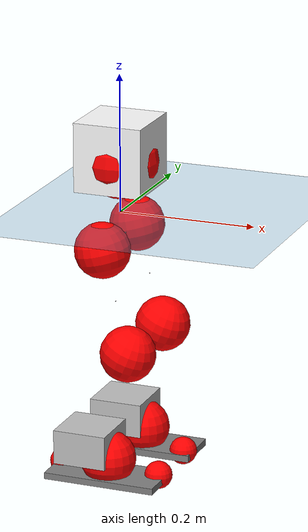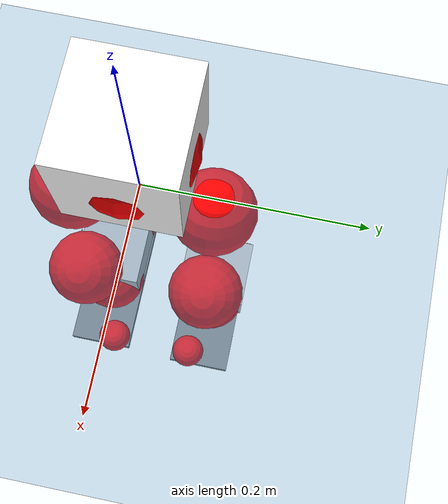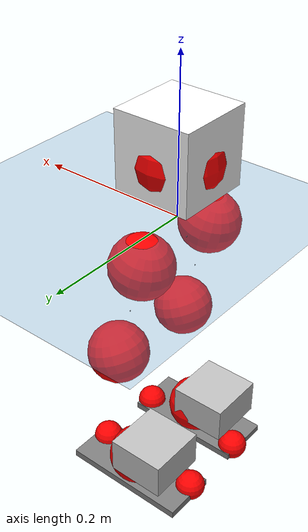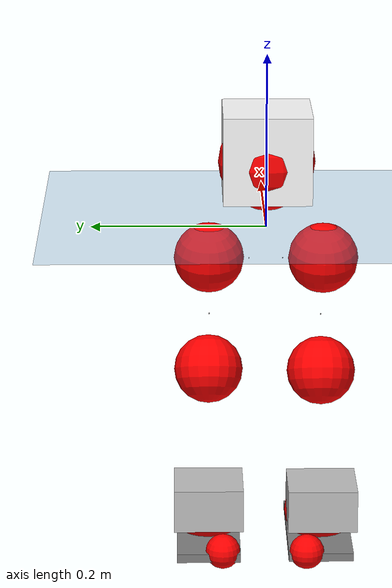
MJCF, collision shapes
<mujoco model="pi_12dof_release_v1">
  <compiler angle="radian" assetdir="assets" balanceinertia="true" inertiafromgeom="false"/>

  <option timestep="0.005" density="1.2" viscosity="2e-05"/>

  <size nkey="1"/>

  <visual>
    <quality shadowsize="8192"/>
    <map shadowclip="0.5"/>
  </visual>

  <default>
    <default class="/">
      <joint armature="0.01" damping="0.01" frictionloss="0.01"/>
      <geom contype="0" conaffinity="0" group="1" solref="-1000 -80"/>
      <site size="0.01 0.005 0.005" group="5"/>
      <general forcelimited="true" biastype="affine" gainprm="20" biasprm="0 -20 -0.5"/>
      <default class="foot">
        <geom size="0.0845 0.036 0.005" type="box" condim="6" group="4" priority="1" friction="0.9 0.2 0.2" solimp="0.015 1 0.005"/>
      </default>
      <default class="reward_collision_sphere">
        <geom group="5" rgba="1 0 0 1"/>
      </default>
    </default>
  </default>

  <asset>
    <texture type="skybox" colorspace="auto" name="//unnamed_texture_0" builtin="gradient" rgb1="0.95 0.95 0.95" rgb2="0.95 0.95 0.95" width="100" height="600"/>
    <texture type="2d" colorspace="auto" name="texplane" builtin="checker" rgb1="0.345 0.575 0.748" rgb2="0.345 0.575 0.748" markrgb="1 1 1" width="512" height="512"/>
    <material name="MatPlane" class="/" texture="texplane" texuniform="true" texrepeat="2 2" specular="0.9"/>
    <mesh name="baselink_1" class="/" file="baselink_1.STL"/>
    <mesh name="r_hip_pitch_link" class="/" file="r_hip_pitch_link.STL"/>
    <mesh name="r_hip_roll_link" class="/" file="r_hip_roll_link.STL"/>
    <mesh name="r_thigh_link" class="/" file="r_thigh_link.STL"/>
    <mesh name="r_calf_link" class="/" file="r_calf_link.STL"/>
    <mesh name="r_ankle_pitch_link" class="/" file="r_ankle_pitch_link.STL"/>
    <mesh name="r_ankle_roll_link" class="/" file="r_ankle_roll_link.STL"/>
    <mesh name="l_hip_pitch_link" class="/" file="l_hip_pitch_link.STL"/>
    <mesh name="l_hip_roll_link" class="/" file="l_hip_roll_link.STL"/>
    <mesh name="l_thigh_link" class="/" file="l_thigh_link.STL"/>
    <mesh name="l_calf_link" class="/" file="l_calf_link.STL"/>
    <mesh name="l_ankle_pitch_link" class="/" file="l_ankle_pitch_link.STL"/>
    <mesh name="l_ankle_roll_link" class="/" file="l_ankle_roll_link.STL"/>
  </asset>

  <worldbody>
    <geom name="floor" class="/" size="100 100 0.125" type="plane" group="0" material="MatPlane"/>
    <light name="toplight_shadow" class="/" pos="0 0 5" dir="0.0990148 0.0990148 -0.990148" type="directional" ambient="0.04 0.04 0.04" diffuse="0.55 0.55 0.55" specular="0.12 0.12 0.12"/>
    <light name="toplight_fill" class="/" pos="0 0 5" dir="0.0990148 0.0990148 -0.990148" type="directional" castshadow="false" ambient="0.04 0.04 0.04" diffuse="0.3 0.3 0.3" specular="0.08 0.08 0.08"/>
    <body name="trunk" pos="0.000224667 4.42804e-05 -0.000798711" quat="1 -0.000106614 7.48839e-06 -0.00017464">
      <inertial pos="0.0033469 -0.00105217 0.0443215" quat="0.695424 0.00976522 0.00813501 0.718487" mass="2.22177" diaginertia="0.0148517 0.00335664 0.00684951"/>
      <joint name="//unnamed_joint_0" type="free"/>
      <geom name="//unnamed_geom_1" class="/" type="mesh" density="0" rgba="1 1 1 1" mesh="baselink_1"/>
      <geom name="//unnamed_geom_2" class="/" size="0.0501178 0.0501178 0.0501178" pos="0 0 0.0882165" type="box" rgba="1 1 1 1"/>
      <geom name="//unnamed_geom_3" class="reward_collision_sphere" size="0.0551296" pos="0 0 0.0771895"/>
      <site name="imu" class="/" pos="0.00251774 -0.00457923 0.00236953" size="0.0100236"/>
      <camera name="track" class="/" pos="0 -1.63938 0" quat="0.707107 0.707107 0 0" mode="trackcom"/>
      <camera name="ego_camera" class="/" pos="0.0813504 0 0.198487" quat="-0.5 -0.5 0.5 0.5"/>
      <body name="r_hip_pitch_link" pos="-0.00037657 -0.0189296 -0.0362855" quat="0.992194 -8.19901e-06 -0.124706 8.95039e-06">
        <inertial pos="0.00124255 -0.0455138 -0.000236908" quat="-0.0224804 0.705564 -0.0283743 0.707721" mass="0.376393" diaginertia="0.000163499 3.66244e-05 0.000136858"/>
        <joint name="r_hip_pitch_joint" class="/" pos="0 0 0" axis="-0.000152967 -1 -0.000929113" range="-1.73907 1.24453" armature="0.0100978" damping="0.0124759" frictionloss="0.0102474"/>
        <geom name="//unnamed_geom_4" class="/" type="mesh" density="0" rgba="0.75294 0.75294 0.75294 1" mesh="r_hip_pitch_link"/>
        <geom name="//unnamed_geom_5" class="/" size="0.000501178 0.000501178 0.000501178" type="box" rgba="0.75294 0.75294 0.75294 1"/>
        <body name="r_hip_roll_link" pos="-0.000173831 -0.0463937 1.39683e-05" quat="1 -4.44921e-06 1.59233e-07 2.36008e-06">
          <inertial pos="-0.00134038 -9.45532e-06 -0.0680573" quat="0.705909 -0.0791574 -0.0825173 0.699012" mass="0.393483" diaginertia="0.000505003 0.000102977 0.000210383"/>
          <joint name="r_hip_roll_joint" class="/" pos="0 0 0" axis="-0.999994 -0.00286794 -0.00168771" range="-0.120287 0.501647" armature="0.00949335" damping="0.0094669" frictionloss="0.00956745"/>
          <geom name="//unnamed_geom_6" class="/" type="mesh" density="0" rgba="0.75294 0.75294 0.75294 1" mesh="r_hip_roll_link"/>
          <geom name="//unnamed_geom_7" class="/" size="0.000501178 0.000501178 0.000501178" type="box" rgba="0.75294 0.75294 0.75294 1"/>
          <geom name="//unnamed_geom_8" class="reward_collision_sphere" size="0.0400943"/>
          <body name="r_thigh_link" pos="0.000260792 0.00110868 -0.0759203" quat="1 -5.85396e-06 -9.72855e-06 4.67174e-05">
            <inertial pos="-0.00066263 0.000259451 -0.0524254" quat="0.736997 0.675895 -0.000743077 0.00122823" mass="0.114075" diaginertia="0.00018738 3.51054e-05 9.45794e-05"/>
            <joint name="r_thigh_joint" class="/" pos="0 0 0" axis="0.000513522 -0.000372427 -1" range="-0.285076 0.588853" armature="0.00956703" damping="0.000424536" frictionloss="0.0097888"/>
            <geom name="//unnamed_geom_9" class="/" type="mesh" density="0" rgba="0.75294 0.75294 0.75294 1" mesh="r_thigh_link"/>
            <geom name="//unnamed_geom_10" class="/" size="0.000501178 0.000501178 0.000501178" type="box" rgba="0.75294 0.75294 0.75294 1"/>
            <body name="r_calf_link" pos="1.82663e-05 -0.00226464 -0.0778031" quat="0.947635 -5.19845e-05 0.319354 -0.000510846">
              <inertial pos="0.000407017 -0.000761877 -0.0770346" quat="0.999975 -0.000379193 0.0031364 0.00640106" mass="0.828156" diaginertia="0.00531659 0.00129371 0.000285638"/>
              <joint name="r_calf_joint" class="/" pos="0 0 0" axis="0.000577421 -0.999999 0.000948422" range="-1.65246 0.630217" armature="0.0100303" damping="0.00783753" frictionloss="0.0099613"/>
              <geom name="//unnamed_geom_11" class="/" type="mesh" density="0" rgba="0.75294 0.75294 0.75294 1" mesh="r_calf_link"/>
              <geom name="//unnamed_geom_12" class="/" size="0.000501178 0.000501178 0.000501178" type="box" rgba="0.75294 0.75294 0.75294 1"/>
              <geom name="//unnamed_geom_13" class="reward_collision_sphere" size="0.0400943"/>
              <body name="r_ankle_pitch_link" pos="-0.000254145 0.000668478 -0.152746" quat="0.980101 -0.000172497 -0.198498 -0.000172631">
                <inertial pos="0.00603957 0.00306004 -8.51442e-05" quat="0.0016697 0.707642 -0.00189261 0.706566" mass="0.17575" diaginertia="0.000459886 8.23046e-05 0.000193477"/>
                <joint name="r_ankle_pitch_joint" class="/" pos="0 0 0" axis="0.00580849 -0.999982 -0.00134236" range="-1.27995 0.498616" armature="0.0102143" damping="0.0146292" frictionloss="0.0102382"/>
                <geom name="//unnamed_geom_14" class="/" type="mesh" density="0" rgba="0.75294 0.75294 0.75294 1" mesh="r_ankle_pitch_link"/>
                <geom name="//unnamed_geom_15" class="/" size="0.0390919 0.0400943 0.0250589" type="box" rgba="0.75294 0.75294 0.75294 1"/>
                <body name="r_ankle_roll_link" pos="0.0819057 0.0023113 -0.000102541" quat="1 0.000202719 2.16341e-05 -7.07212e-05">
                  <inertial pos="-0.0259365 -0.000122641 -0.0165836" quat="0.560475 0.431356 0.429562 0.561495" mass="0.517418" diaginertia="0.00169857 0.000380231 0.000465069"/>
                  <joint name="r_ankle_roll_joint" class="/" pos="0 0 0" axis="-1 -0.000542932 0.000809821" range="-0.173204 0.1329" armature="0.0100315" damping="0.0127642" frictionloss="0.00979341"/>
                  <geom name="//unnamed_geom_16" class="/" type="mesh" density="0" rgba="0.75294 0.75294 0.75294 1" mesh="r_ankle_roll_link"/>
                  <geom name="//unnamed_geom_17" class="/" type="mesh" rgba="0.75294 0.75294 0.75294 1" mesh="r_ankle_roll_link"/>
                  <geom name="right_foot" class="foot" size="0.0829123 0.0372717 0.00475513" pos="-0.0553183 0 -0.0485191"/>
                  <geom name="//unnamed_geom_19" class="reward_collision_sphere" size="0.0400943" pos="-0.0542336 0 -0.0220541"/>
                  <geom name="//unnamed_geom_20" class="reward_collision_sphere" size="0.0200471" pos="0.0162701 0.0163938 -0.0441083"/>
                  <geom name="//unnamed_geom_21" class="reward_collision_sphere" size="0.0200471" pos="-0.130161 0.0163938 -0.0441083"/>
                  <site name="right_foot" class="foot" pos="-0.0553183 0 -0.0485191" size="0.0100236"/>
                </body>
              </body>
            </body>
          </body>
        </body>
      </body>
      <body name="l_hip_pitch_link" pos="-0.000116041 0.0196726 -0.0362643" quat="0.9922 -2.17034e-05 -0.124657 5.91447e-05">
        <inertial pos="0.00157765 0.0436962 -0.00138163" quat="-0.0398685 0.70566 0.0313523 0.706733" mass="0.396603" diaginertia="0.00019683 3.91021e-05 0.00016717"/>
        <joint name="l_hip_pitch_joint" class="/" pos="0 0 0" axis="-0.00055993 1 -0.00044234" range="-1.2613 1.76893" armature="0.0100242" damping="0.00503423" frictionloss="0.00958295"/>
        <geom name="//unnamed_geom_22" class="/" type="mesh" density="0" rgba="0.75294 0.75294 0.75294 1" mesh="l_hip_pitch_link"/>
        <geom name="//unnamed_geom_23" class="/" size="0.000501178 0.000501178 0.000501178" type="box" rgba="0.75294 0.75294 0.75294 1"/>
        <body name="l_hip_roll_link" pos="-0.000301473 0.0458334 0.00114138" quat="1 3.65192e-05 4.10318e-05 0.000367205">
          <inertial pos="-0.000119849 0.000505031 -0.06862" quat="0.699289 -0.0752719 -0.0780362 0.706569" mass="0.398825" diaginertia="0.000510692 0.000104769 0.000210668"/>
          <joint name="l_hip_roll_joint" class="/" pos="0 0 0" axis="-1 2.52787e-06 -7.40958e-05" stiffness="0.00019723" range="-0.500213 0.135599" armature="0.0103105" damping="0.00069856" frictionloss="0.0100372"/>
          <geom name="//unnamed_geom_24" class="/" type="mesh" density="0" rgba="0.75294 0.75294 0.75294 1" mesh="l_hip_roll_link"/>
          <geom name="//unnamed_geom_25" class="/" size="0.000501178 0.000501178 0.000501178" type="box" rgba="0.75294 0.75294 0.75294 1"/>
          <geom name="//unnamed_geom_26" class="reward_collision_sphere" size="0.0400943"/>
          <body name="l_thigh_link" pos="0.000644063 -0.000465982 -0.0759957" quat="1 -6.79362e-05 -0.000221914 -0.000156115">
            <inertial pos="-0.00023605 -0.00231435 -0.053649" quat="0.674566 0.738214 0.000268505 -0.000171153" mass="0.114089" diaginertia="0.000189321 3.57233e-05 9.45624e-05"/>
            <joint name="l_thigh_joint" class="/" pos="0 0 0" axis="-0.000105737 0.000504028 -1" stiffness="0.000499396" range="-0.595368 0.287864" armature="0.00978968" damping="0.00928885" frictionloss="0.0104962"/>
            <geom name="//unnamed_geom_27" class="/" type="mesh" density="0" rgba="0.75294 0.75294 0.75294 1" mesh="l_thigh_link"/>
            <geom name="//unnamed_geom_28" class="/" size="0.000501178 0.000501178 0.000501178" type="box" rgba="0.75294 0.75294 0.75294 1"/>
            <body name="l_calf_link" pos="0.00092819 0.000560246 -0.0769548" quat="0.947653 7.71369e-05 0.319302 6.88266e-05">
              <inertial pos="0.00101019 0.00352484 -0.0766002" quat="0.999979 0.00459649 -0.000516597 0.00464414" mass="0.814886" diaginertia="0.0053746 0.00130826 0.000284264"/>
              <joint name="l_calf_joint" class="/" pos="0 0 0" axis="-0.0007729 0.999984 -0.00556271" range="-0.64965 1.65988" armature="0.0101981" damping="0.0120315" frictionloss="0.0095886"/>
              <geom name="//unnamed_geom_29" class="/" type="mesh" density="0" rgba="0.75294 0.75294 0.75294 1" mesh="l_calf_link"/>
              <geom name="//unnamed_geom_30" class="/" size="0.000501178 0.000501178 0.000501178" type="box" rgba="0.75294 0.75294 0.75294 1"/>
              <geom name="//unnamed_geom_31" class="reward_collision_sphere" size="0.0400943"/>
              <body name="l_ankle_pitch_link" pos="0.000642863 0.000777234 -0.15372" quat="0.980054 0.000237797 -0.198733 -0.000105621">
                <inertial pos="0.00448283 0.000219085 -0.000604006" quat="-0.00608213 0.706271 0.00343292 0.707907" mass="0.174865" diaginertia="0.000461342 8.18275e-05 0.000196301"/>
                <joint name="l_ankle_pitch_joint" class="/" pos="0 0 0" axis="-0.000491238 1 0.000473225" range="-0.488355 1.29741" armature="0.0103599" damping="0" frictionloss="0.0102397"/>
                <geom name="//unnamed_geom_32" class="/" type="mesh" density="0" rgba="0.75294 0.75294 0.75294 1" mesh="l_ankle_pitch_link"/>
                <geom name="//unnamed_geom_33" class="/" size="0.0390919 0.0400943 0.0250589" type="box" rgba="0.75294 0.75294 0.75294 1"/>
                <body name="l_ankle_roll_link" pos="0.0809918 4.13141e-05 -0.000298941" quat="1 -0.000350317 -0.00029985 -0.000306482">
                  <inertial pos="-0.0263165 -0.000441818 -0.0160369" quat="0.559383 0.429808 0.435172 0.559447" mass="0.513177" diaginertia="0.00167043 0.000373152 0.000454128"/>
                  <joint name="l_ankle_roll_joint" class="/" pos="0 0 0" axis="-1 -0.000442472 -0.000288214" range="-0.146787 0.129574" armature="0.0100042" damping="0.0106164" frictionloss="0.010429"/>
                  <geom name="//unnamed_geom_34" class="/" type="mesh" density="0" rgba="0.75294 0.75294 0.75294 1" mesh="l_ankle_roll_link"/>
                  <geom name="//unnamed_geom_35" class="/" type="mesh" rgba="0.75294 0.75294 0.75294 1" mesh="l_ankle_roll_link"/>
                  <geom name="left_foot" class="foot" size="0.0865429 0.0366581 0.00505237" pos="-0.0553183 0 -0.0485191"/>
                  <geom name="//unnamed_geom_37" class="reward_collision_sphere" size="0.0400943" pos="-0.0542336 0 -0.0220541"/>
                  <geom name="//unnamed_geom_38" class="reward_collision_sphere" size="0.0200471" pos="0.0162701 -0.0163938 -0.0441083"/>
                  <geom name="//unnamed_geom_39" class="reward_collision_sphere" size="0.0200471" pos="-0.130161 -0.0163938 -0.0441083"/>
                  <site name="left_foot" class="foot" pos="-0.0553183 0 -0.0485191" size="0.0100236"/>
                </body>
              </body>
            </body>
          </body>
        </body>
      </body>
    </body>
  </worldbody>

  <contact>
    <pair class="/" geom1="floor" geom2="right_foot" name="//unnamed_contact_1"/>
    <pair class="/" geom1="floor" geom2="left_foot" name="//unnamed_contact_0"/>
  </contact>

  <actuator>
    <general name="r_hip_pitch_joint" class="/" joint="r_hip_pitch_joint" forcerange="-21.0583 21.0583" gainprm="19.5345" biasprm="0 -19.5345 -0.502551"/>
    <general name="r_hip_roll_joint" class="/" joint="r_hip_roll_joint" forcerange="-20.2602 20.2602" gainprm="19.5345" biasprm="0 -19.5345 -0.502551"/>
    <general name="r_thigh_joint" class="/" joint="r_thigh_joint" forcerange="-21.035 21.035" gainprm="19.5345" biasprm="0 -19.5345 -0.502551"/>
    <general name="r_calf_joint" class="/" joint="r_calf_joint" forcerange="-21.9488 21.9488" gainprm="19.5345" biasprm="0 -19.5345 -0.502551"/>
    <general name="r_ankle_pitch_joint" class="/" joint="r_ankle_pitch_joint" forcerange="-21.5558 21.5558" gainprm="19.5345" biasprm="0 -19.5345 -0.502551"/>
    <general name="r_ankle_roll_joint" class="/" joint="r_ankle_roll_joint" forcerange="-20.2467 20.2467" gainprm="19.5345" biasprm="0 -19.5345 -0.502551"/>
    <general name="l_hip_pitch_joint" class="/" joint="l_hip_pitch_joint" forcerange="-20.9224 20.9224" gainprm="19.5345" biasprm="0 -19.5345 -0.502551"/>
    <general name="l_hip_roll_joint" class="/" joint="l_hip_roll_joint" forcerange="-21.4516 21.4516" gainprm="19.5345" biasprm="0 -19.5345 -0.502551"/>
    <general name="l_thigh_joint" class="/" joint="l_thigh_joint" forcerange="-20.3268 20.3268" gainprm="19.5345" biasprm="0 -19.5345 -0.502551"/>
    <general name="l_calf_joint" class="/" joint="l_calf_joint" forcerange="-20.7018 20.7018" gainprm="19.5345" biasprm="0 -19.5345 -0.502551"/>
    <general name="l_ankle_pitch_joint" class="/" joint="l_ankle_pitch_joint" forcerange="-20.3384 20.3384" gainprm="19.5345" biasprm="0 -19.5345 -0.502551"/>
    <general name="l_ankle_roll_joint" class="/" joint="l_ankle_roll_joint" forcerange="-20.8671 20.8671" gainprm="19.5345" biasprm="0 -19.5345 -0.502551"/>
  </actuator>

  <sensor>
    <gyro site="imu" name="imu_angular_velocity"/>
    <velocimeter site="imu" name="imu_linear_velocity"/>
    <framelinvel objtype="site" objname="left_foot" name="left_foot_global_linear_velocity"/>
    <framelinvel objtype="site" objname="right_foot" name="right_foot_global_linear_velocity"/>
  </sensor>

  <keyframe>
    <key name="home" qpos="0 0 0.291 1 0 0 0 0.4 0 0 -0.8 0.4 0 -0.4 0 0 0.8 -0.4 0"/>
  </keyframe>
</mujoco>
